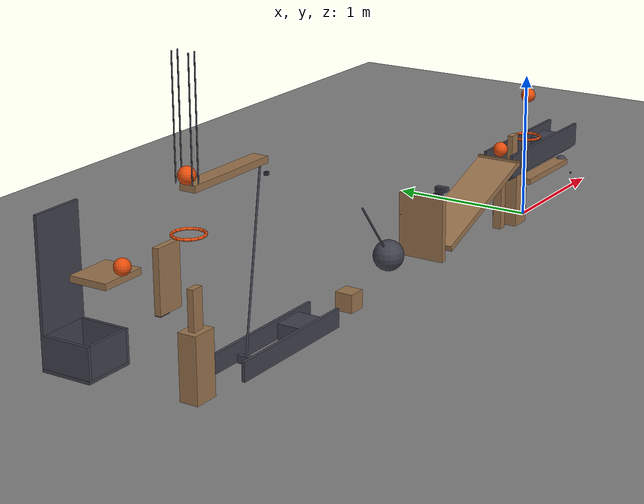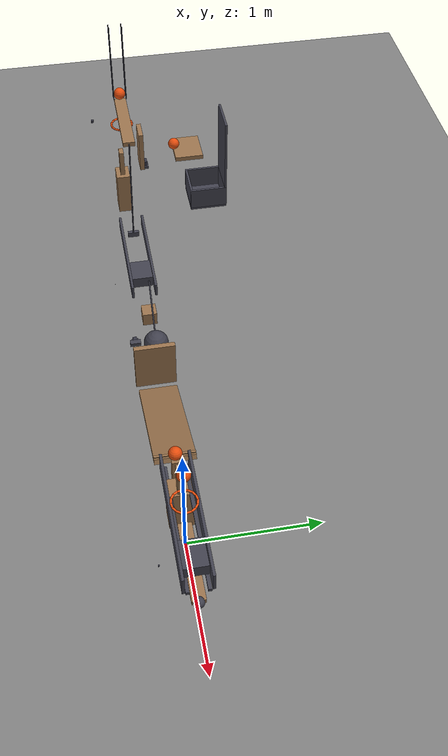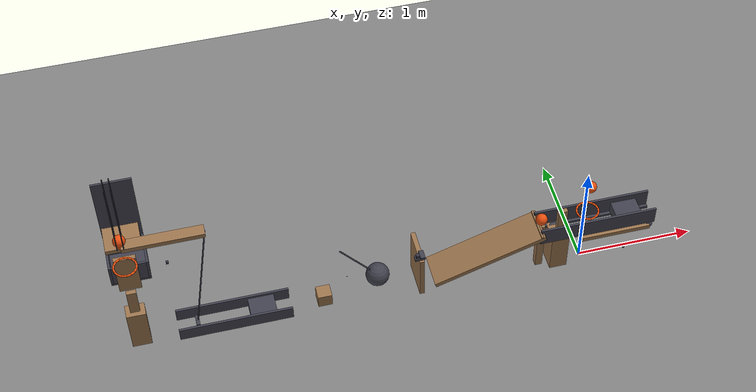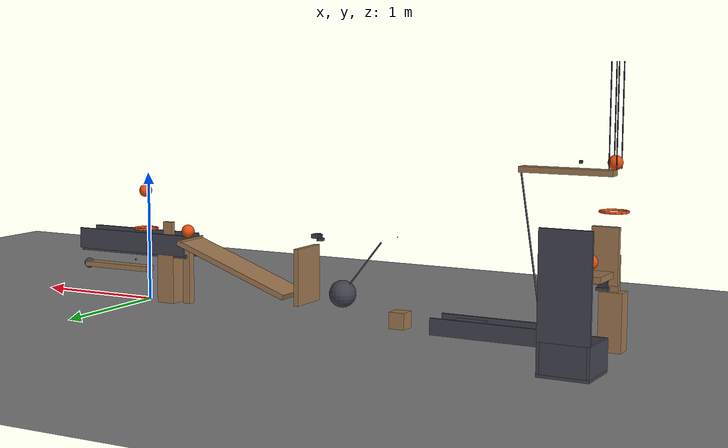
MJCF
<mujoco model="guided_gravity_and_spring_cascade">
  <compiler angle="radian"/>
  <option timestep="0.002"/>
  <worldbody>
    <geom name="floor" type="plane" size="10 10 0.1" friction="0.72 0.005 0.002"/>
    <body name="ring1">
      <geom name="ring1_00" type="capsule" size="0.008" fromto="0.122 0 0.56 0.114997 0.0352069 0.56" friction="0.72 0.005 0.0001" solref="0.01 1" rgba="0.9 0.3 0.05 1"/>
      <geom name="ring1_01" type="capsule" size="0.008" fromto="0.114997 0.0352069 0.56 0.0950538 0.0650538 0.56" friction="0.72 0.005 0.0001" solref="0.01 1" rgba="0.9 0.3 0.05 1"/>
      <geom name="ring1_02" type="capsule" size="0.008" fromto="0.0950538 0.0650538 0.56 0.0652069 0.0849969 0.56" friction="0.72 0.005 0.0001" solref="0.01 1" rgba="0.9 0.3 0.05 1"/>
      <geom name="ring1_03" type="capsule" size="0.008" fromto="0.0652069 0.0849969 0.56 0.03 0.092 0.56" friction="0.72 0.005 0.0001" solref="0.01 1" rgba="0.9 0.3 0.05 1"/>
      <geom name="ring1_04" type="capsule" size="0.008" fromto="0.03 0.092 0.56 -0.00520688 0.0849969 0.56" friction="0.72 0.005 0.0001" solref="0.01 1" rgba="0.9 0.3 0.05 1"/>
      <geom name="ring1_05" type="capsule" size="0.008" fromto="-0.00520688 0.0849969 0.56 -0.0350538 0.0650538 0.56" friction="0.72 0.005 0.0001" solref="0.01 1" rgba="0.9 0.3 0.05 1"/>
      <geom name="ring1_06" type="capsule" size="0.008" fromto="-0.0350538 0.0650538 0.56 -0.0549969 0.0352069 0.56" friction="0.72 0.005 0.0001" solref="0.01 1" rgba="0.9 0.3 0.05 1"/>
      <geom name="ring1_07" type="capsule" size="0.008" fromto="-0.0549969 0.0352069 0.56 -0.062 1.12668e-17 0.56" friction="0.72 0.005 0.0001" solref="0.01 1" rgba="0.9 0.3 0.05 1"/>
      <geom name="ring1_08" type="capsule" size="0.008" fromto="-0.062 1.12668e-17 0.56 -0.0549969 -0.0352069 0.56" friction="0.72 0.005 0.0001" solref="0.01 1" rgba="0.9 0.3 0.05 1"/>
      <geom name="ring1_09" type="capsule" size="0.008" fromto="-0.0549969 -0.0352069 0.56 -0.0350538 -0.0650538 0.56" friction="0.72 0.005 0.0001" solref="0.01 1" rgba="0.9 0.3 0.05 1"/>
      <geom name="ring1_10" type="capsule" size="0.008" fromto="-0.0350538 -0.0650538 0.56 -0.00520688 -0.0849969 0.56" friction="0.72 0.005 0.0001" solref="0.01 1" rgba="0.9 0.3 0.05 1"/>
      <geom name="ring1_11" type="capsule" size="0.008" fromto="-0.00520688 -0.0849969 0.56 0.03 -0.092 0.56" friction="0.72 0.005 0.0001" solref="0.01 1" rgba="0.9 0.3 0.05 1"/>
      <geom name="ring1_12" type="capsule" size="0.008" fromto="0.03 -0.092 0.56 0.0652069 -0.0849969 0.56" friction="0.72 0.005 0.0001" solref="0.01 1" rgba="0.9 0.3 0.05 1"/>
      <geom name="ring1_13" type="capsule" size="0.008" fromto="0.0652069 -0.0849969 0.56 0.0950538 -0.0650538 0.56" friction="0.72 0.005 0.0001" solref="0.01 1" rgba="0.9 0.3 0.05 1"/>
      <geom name="ring1_14" type="capsule" size="0.008" fromto="0.0950538 -0.0650538 0.56 0.114997 -0.0352069 0.56" friction="0.72 0.005 0.0001" solref="0.01 1" rgba="0.9 0.3 0.05 1"/>
      <geom name="ring1_15" type="capsule" size="0.008" fromto="0.114997 -0.0352069 0.56 0.122 -2.25335e-17 0.56" friction="0.72 0.005 0.0001" solref="0.01 1" rgba="0.9 0.3 0.05 1"/>
    </body>
    <body name="lever1" pos="0.3 0 0.24">
      <joint name="lever1_hinge" type="hinge" pos="0 0 0" axis="0 1 0" limited="true" range="-0.785398 0" damping="0.04"/>
      <geom name="lever1" type="box" pos="0 0 0" size="0.3 0.05 0.02" mass="0.5" friction="0.72 0.005 0.0001" solref="0.01 1" rgba="0.6 0.45 0.3 1"/>
      <geom name="lever gravity assist" type="box" pos="2e-05 -0.22 0.02" size="0.005 0.005 0.005" mass="600" friction="0.72 0.005 0.0001" solref="0.01 1" rgba="0.2 0.2 0.25 1"/>
      <geom name="lever striking head" type="sphere" pos="0.3 0 0" size="0.04" mass="0.005" friction="0.72 0.005 0.0001" solref="0.01 1" rgba="0.25 0.25 0.3 1"/>
    </body>
    <body name="ball1" pos="0.03 0 0.86">
      <freejoint/>
      <geom name="ball1" type="sphere" pos="0 0 0" size="0.05" mass="0.2" condim="6" friction="0.72 0.005 0.0001" solref="0.01 1" rgba="0.9 0.3 0.05 1"/>
    </body>
    <body name="cart1 left runner">
      <geom name="cart1 left runner" type="box" pos="0.1 0.074 0.3725" size="0.5 0.013 0.0125" friction="0.72 0.005 0.0001" solref="0.01 1" rgba="0.25 0.25 0.3 1"/>
    </body>
    <body name="cart1 right runner">
      <geom name="cart1 right runner" type="box" pos="0.1 -0.074 0.3725" size="0.5 0.013 0.0125" friction="0.72 0.005 0.0001" solref="0.01 1" rgba="0.25 0.25 0.3 1"/>
    </body>
    <body name="cart1 left guide">
      <geom name="cart1 left guide" type="box" pos="0.1 0.101 0.46" size="0.5 0.01 0.08" friction="0.72 0.005 0.0001" solref="0.01 1" rgba="0.25 0.25 0.3 1"/>
    </body>
    <body name="cart1 right guide">
      <geom name="cart1 right guide" type="box" pos="0.1 -0.101 0.46" size="0.5 0.01 0.08" friction="0.72 0.005 0.0001" solref="0.01 1" rgba="0.25 0.25 0.3 1"/>
    </body>
    <body name="domino1 pedestal">
      <geom name="domino1 pedestal" type="box" pos="-0.215 0 0.1925" size="0.075 0.09 0.1925" friction="0.72 0.005 0.0001" solref="0.01 1" rgba="0.6 0.45 0.3 1"/>
    </body>
    <body name="cart1" pos="0.38 0 0.435">
      <freejoint/>
      <geom name="cart1" type="box" pos="0 0 0" size="0.11 0.09 0.05" mass="0.5" friction="0.72 0.005 0.0001" solref="0.01 1" rgba="0.25 0.25 0.3 1"/>
    </body>
    <body name="domino1" pos="-0.19 0 0.505">
      <freejoint/>
      <geom name="domino1" type="box" pos="0 0 0" size="0.04 0.02 0.12" mass="0.25" friction="0.72 0.005 0.0001" solref="0.01 1" rgba="0.6 0.45 0.3 1"/>
    </body>
    <body name="ramp1">
      <geom name="ramp1_deck" type="box" pos="-0.839846 0 0.32101" size="0.5 0.15 0.02" euler="0 2.79253 0" friction="0.72 0.005 0.0001" solref="0.01 1" rgba="0.6 0.45 0.3 1"/>
      <geom name="ramp1_leg" type="box" pos="-0.37 0 0.24601" size="0.03 0.03 0.24601" friction="0.72 0.005 0.0001" solref="0.01 1" rgba="0.6 0.45 0.3 1"/>
    </body>
    <body name="ball2 retaining lip">
      <geom name="ball2 retaining lip" type="box" pos="-0.403 0 0.506" size="0.008 0.15 0.009" friction="0.72 0.005 0.0001" solref="0.01 1" rgba="0.6 0.45 0.3 1"/>
    </body>
    <body name="ball2" pos="-0.37 0 0.564">
      <freejoint/>
      <geom name="ball2" type="sphere" pos="0 0 0" size="0.05" mass="0.2" condim="6" friction="0.72 0.005 0.0001" solref="0.01 1" rgba="0.9 0.3 0.05 1"/>
    </body>
    <body name="door1" pos="-1.42969 0.16 0.31">
      <joint name="door1_hinge" type="hinge" pos="0 0 0" axis="0 0 1" limited="true" range="-1.22173 0" stiffness="3.4" springref="-1.22173" damping="0.04"/>
      <geom name="door1" type="box" pos="0 -0.16 0" size="0.02 0.16 0.21" mass="0.45" friction="0.72 0.005 0.0001" solref="0.01 1" rgba="0.6 0.45 0.3 1"/>
      <geom name="door latch tab" type="box" pos="0 -0.3 0.275" size="0.02 0.04 0.015" mass="0.001" friction="0.72 0.005 0.0001" solref="0.01 1" rgba="0.25 0.25 0.3 1"/>
    </body>
    <body name="door latch pedestal">
      <geom name="door latch pedestal" type="box" pos="-1.46969 -0.14 0.56" size="0.02 0.025 0.01" friction="0.72 0.005 0.0001" solref="0.01 1" rgba="0.25 0.25 0.3 1"/>
    </body>
    <body name="door latch" pos="-1.46469 -0.14 0.585">
      <freejoint/>
      <geom name="door latch" type="box" pos="0 0 0" size="0.015 0.015 0.015" mass="2" friction="0.72 0.005 0.0001" solref="0.01 1" rgba="0.2 0.2 0.25 1"/>
    </body>
    <body name="pendulum1" pos="-2.0678 0.05 0.6">
      <joint name="pendulum1_hinge" type="hinge" pos="0 0 0" axis="0 1 0" limited="true" range="0 0.663225" damping="0.04"/>
      <geom name="pendulum1" type="sphere" pos="0.307831 0 -0.394005" size="0.1" mass="0.33" friction="0.72 0.005 0.0001" solref="0.01 1" rgba="0.25 0.25 0.3 1"/>
      <geom name="pendulum rod" type="capsule" size="0.006" fromto="0 0 0 0.307831 6.93889e-18 -0.394005" mass="0.02" friction="0.72 0.005 0.0001" solref="0.01 1" rgba="0.25 0.25 0.3 1"/>
      <geom name="pendulum gravity assist" type="box" pos="-4.4e-05 -0.27 0.01" size="0.002 0.002 0.002" mass="2500" friction="0.72 0.005 0.0001" solref="0.01 1" rgba="0.2 0.2 0.25 1"/>
    </body>
    <body name="block1" pos="-2.2238 0.05 0.06">
      <freejoint/>
      <geom name="block1" type="box" pos="0 0 0" size="0.06 0.06 0.06" mass="0.35" friction="0.72 0.005 0.0001" solref="0.01 1" rgba="0.6 0.45 0.3 1"/>
    </body>
    <body name="cart2 left guide">
      <geom name="cart2 left guide" type="box" pos="-2.98 0.151 0.06" size="0.475 0.01 0.06" friction="0.72 0.005 0.0001" solref="0.01 1" rgba="0.25 0.25 0.3 1"/>
    </body>
    <body name="cart2 right guide">
      <geom name="cart2 right guide" type="box" pos="-2.98 -0.051 0.06" size="0.475 0.01 0.06" friction="0.72 0.005 0.0001" solref="0.01 1" rgba="0.25 0.25 0.3 1"/>
    </body>
    <body name="cart2" pos="-2.7438 0.05 0.05">
      <freejoint/>
      <geom name="cart2" type="box" pos="0 0 0" size="0.11 0.09 0.05" mass="0.5" friction="0.72 0.005 0.0001" solref="0.01 1" rgba="0.25 0.25 0.3 1"/>
    </body>
    <body name="seesaw1" pos="-3.4388 0.05 1.18">
      <joint name="seesaw1_hinge" type="hinge" pos="0 0 0" axis="0 1 0" limited="true" range="0 0.733038" damping="0.04"/>
      <geom name="seesaw1" type="box" pos="0 0 0" size="0.325 0.05 0.02" mass="0.55" friction="0.72 0.005 0.0001" solref="0.01 1" rgba="0.6 0.45 0.3 1"/>
      <geom name="seesaw input rod" type="capsule" size="0.006" fromto="0.325 0 0 0.15 0 -1.13" mass="0.01" friction="0.72 0.005 0.0001" solref="0.01 1" rgba="0.25 0.25 0.3 1"/>
      <geom name="seesaw input pad" type="box" pos="0.15 0 -1.13" size="0.015 0.05 0.025" mass="0.005" friction="0.72 0.005 0.0001" solref="0.01 1" rgba="0.25 0.25 0.3 1"/>
      <geom name="seesaw gravity assist" type="box" pos="0.0005 -0.27 0.04" size="0.01 0.01 0.01" mass="100" friction="0.72 0.005 0.0001" solref="0.01 1" rgba="0.2 0.2 0.25 1"/>
    </body>
    <body name="ball3" pos="-3.7638 0.05 1.25">
      <freejoint/>
      <geom name="ball3" type="sphere" pos="0 0 0" size="0.05" mass="0.2" condim="6" friction="0.72 0.005 0.0001" solref="0.01 1" rgba="0.9 0.3 0.05 1"/>
    </body>
    <body name="ball3 guide">
      <geom name="ball3 guide_near_left_rail" type="capsule" size="0.004" fromto="-3.7888 0.1035 1.21 -3.7888 0.1035 1.9" friction="0.72 0.005 0.0001" solref="0.01 1" rgba="0.25 0.25 0.3 1"/>
      <geom name="ball3 guide_near_right_rail" type="capsule" size="0.004" fromto="-3.7888 -0.0035 1.21 -3.7888 -0.0035 1.9" friction="0.72 0.005 0.0001" solref="0.01 1" rgba="0.25 0.25 0.3 1"/>
      <geom name="ball3 guide_far_left_rail" type="capsule" size="0.004" fromto="-3.7388 0.1035 1.21 -3.7388 0.1035 1.9" friction="0.72 0.005 0.0001" solref="0.01 1" rgba="0.25 0.25 0.3 1"/>
      <geom name="ball3 guide_far_right_rail" type="capsule" size="0.004" fromto="-3.7388 -0.0035 1.21 -3.7388 -0.0035 1.9" friction="0.72 0.005 0.0001" solref="0.01 1" rgba="0.25 0.25 0.3 1"/>
    </body>
    <body name="ring2">
      <geom name="ring2_00" type="capsule" size="0.008" fromto="-3.6718 0.05 0.93 -3.6788 0.0852069 0.93" friction="0.72 0.005 0.0001" solref="0.01 1" rgba="0.9 0.3 0.05 1"/>
      <geom name="ring2_01" type="capsule" size="0.008" fromto="-3.6788 0.0852069 0.93 -3.69875 0.115054 0.93" friction="0.72 0.005 0.0001" solref="0.01 1" rgba="0.9 0.3 0.05 1"/>
      <geom name="ring2_02" type="capsule" size="0.008" fromto="-3.69875 0.115054 0.93 -3.72859 0.134997 0.93" friction="0.72 0.005 0.0001" solref="0.01 1" rgba="0.9 0.3 0.05 1"/>
      <geom name="ring2_03" type="capsule" size="0.008" fromto="-3.72859 0.134997 0.93 -3.7638 0.142 0.93" friction="0.72 0.005 0.0001" solref="0.01 1" rgba="0.9 0.3 0.05 1"/>
      <geom name="ring2_04" type="capsule" size="0.008" fromto="-3.7638 0.142 0.93 -3.79901 0.134997 0.93" friction="0.72 0.005 0.0001" solref="0.01 1" rgba="0.9 0.3 0.05 1"/>
      <geom name="ring2_05" type="capsule" size="0.008" fromto="-3.79901 0.134997 0.93 -3.82885 0.115054 0.93" friction="0.72 0.005 0.0001" solref="0.01 1" rgba="0.9 0.3 0.05 1"/>
      <geom name="ring2_06" type="capsule" size="0.008" fromto="-3.82885 0.115054 0.93 -3.8488 0.0852069 0.93" friction="0.72 0.005 0.0001" solref="0.01 1" rgba="0.9 0.3 0.05 1"/>
      <geom name="ring2_07" type="capsule" size="0.008" fromto="-3.8488 0.0852069 0.93 -3.8558 0.05 0.93" friction="0.72 0.005 0.0001" solref="0.01 1" rgba="0.9 0.3 0.05 1"/>
      <geom name="ring2_08" type="capsule" size="0.008" fromto="-3.8558 0.05 0.93 -3.8488 0.0147931 0.93" friction="0.72 0.005 0.0001" solref="0.01 1" rgba="0.9 0.3 0.05 1"/>
      <geom name="ring2_09" type="capsule" size="0.008" fromto="-3.8488 0.0147931 0.93 -3.82885 -0.0150538 0.93" friction="0.72 0.005 0.0001" solref="0.01 1" rgba="0.9 0.3 0.05 1"/>
      <geom name="ring2_10" type="capsule" size="0.008" fromto="-3.82885 -0.0150538 0.93 -3.79901 -0.0349969 0.93" friction="0.72 0.005 0.0001" solref="0.01 1" rgba="0.9 0.3 0.05 1"/>
      <geom name="ring2_11" type="capsule" size="0.008" fromto="-3.79901 -0.0349969 0.93 -3.7638 -0.042 0.93" friction="0.72 0.005 0.0001" solref="0.01 1" rgba="0.9 0.3 0.05 1"/>
      <geom name="ring2_12" type="capsule" size="0.008" fromto="-3.7638 -0.042 0.93 -3.72859 -0.0349969 0.93" friction="0.72 0.005 0.0001" solref="0.01 1" rgba="0.9 0.3 0.05 1"/>
      <geom name="ring2_13" type="capsule" size="0.008" fromto="-3.72859 -0.0349969 0.93 -3.69875 -0.0150538 0.93" friction="0.72 0.005 0.0001" solref="0.01 1" rgba="0.9 0.3 0.05 1"/>
      <geom name="ring2_14" type="capsule" size="0.008" fromto="-3.69875 -0.0150538 0.93 -3.6788 0.0147931 0.93" friction="0.72 0.005 0.0001" solref="0.01 1" rgba="0.9 0.3 0.05 1"/>
      <geom name="ring2_15" type="capsule" size="0.008" fromto="-3.6788 0.0147931 0.93 -3.6718 0.05 0.93" friction="0.72 0.005 0.0001" solref="0.01 1" rgba="0.9 0.3 0.05 1"/>
    </body>
    <body name="domino2 pedestal">
      <geom name="domino2 pedestal" type="box" pos="-3.7638 0.025 0.2" size="0.08 0.06 0.2" friction="0.72 0.005 0.0001" solref="0.01 1" rgba="0.6 0.45 0.3 1"/>
    </body>
    <body name="domino2" pos="-3.7638 0.025 0.52">
      <freejoint/>
      <geom name="domino2" type="box" pos="0 0 0" size="0.04 0.02 0.12" mass="0.25" friction="0.72 0.005 0.0001" solref="0.01 1" rgba="0.6 0.45 0.3 1"/>
    </body>
    <body name="flap1" pos="-3.7638 0.205 0.85">
      <joint name="flap1_hinge" type="hinge" pos="0 0 0" axis="1 0 0" limited="true" range="0 1.0472" stiffness="0.61" springref="1.0472" damping="0.04"/>
      <geom name="flap1" type="box" pos="0 0 -0.19" size="0.09 0.02 0.19" mass="0.28" friction="0.72 0.005 0.0001" solref="0.01 1" rgba="0.6 0.45 0.3 1"/>
    </body>
    <body name="flap latch pedestal">
      <geom name="flap latch pedestal" type="box" pos="-3.7638 0.245 0.45" size="0.04 0.02 0.01" friction="0.72 0.005 0.0001" solref="0.01 1" rgba="0.25 0.25 0.3 1"/>
    </body>
    <body name="flap latch" pos="-3.7638 0.24 0.485">
      <freejoint/>
      <geom name="flap latch" type="box" pos="0 0 0" size="0.03 0.015 0.025" mass="0.25" friction="0.72 0.005 0.0001" solref="0.01 1" rgba="0.2 0.2 0.25 1"/>
    </body>
    <body name="cup1">
      <geom name="cup1_base" type="box" pos="-3.7638 0.805 0.01" size="0.17 0.17 0.01" friction="0.72 0.005 0.0001" solref="0.01 1" rgba="0.25 0.25 0.3 1"/>
      <geom name="cup1_near_wall" type="box" pos="-3.9238 0.805 0.12" size="0.01 0.17 0.1" friction="0.72 0.005 0.0001" solref="0.01 1" rgba="0.25 0.25 0.3 1"/>
      <geom name="cup1_far_wall" type="box" pos="-3.6038 0.805 0.12" size="0.01 0.17 0.1" friction="0.72 0.005 0.0001" solref="0.01 1" rgba="0.25 0.25 0.3 1"/>
      <geom name="cup1_left_wall" type="box" pos="-3.7638 0.965 0.12" size="0.15 0.01 0.1" friction="0.72 0.005 0.0001" solref="0.01 1" rgba="0.25 0.25 0.3 1"/>
      <geom name="cup1_right_wall" type="box" pos="-3.7638 0.645 0.12" size="0.15 0.01 0.1" friction="0.72 0.005 0.0001" solref="0.01 1" rgba="0.25 0.25 0.3 1"/>
    </body>
    <body name="shelf1">
      <geom name="shelf1" type="box" pos="-3.7638 0.63 0.59" size="0.15 0.125 0.02" friction="0.72 0.005 0.0001" solref="0.01 1" rgba="0.6 0.45 0.3 1"/>
    </body>
    <body name="ball4" pos="-3.7638 0.51 0.66">
      <freejoint/>
      <geom name="ball4" type="sphere" pos="0 0 0" size="0.05" mass="0.2" condim="6" friction="0.72 0.005 0.0001" solref="0.01 1" rgba="0.9 0.3 0.05 1"/>
    </body>
    <body name="cup catch screen">
      <geom name="cup catch screen" type="box" pos="-3.7638 0.965 0.57" size="0.17 0.01 0.35" friction="0.72 0.005 0.0001" solref="0.01 1" rgba="0.25 0.25 0.3 1"/>
    </body>
  </worldbody>
  <keyframe>
    <key name="start" qpos="0 0.03 0 0.86 1 0 0 0 0.38 0 0.435 1 0 0 0 -0.19 0 0.505 1 0 0 0 -0.37 0 0.564 1 0 0 0 0 -1.46469 -0.14 0.585 1 0 0 0 0 -2.2238 0.05 0.06 1 0 0 0 -2.7438 0.05 0.05 1 0 0 0 0 -3.7638 0.05 1.25 1 0 0 0 -3.7638 0.025 0.52 1 0 0 0 0 -3.7638 0.24 0.485 1 0 0 0 -3.7638 0.51 0.66 1 0 0 0" qvel="0 0 0 0 0 0 0 0 0 0 0 0 0 0 0 0 0 0 0 0 0 0 0 0 0 0 0 0 0 0 0 0 0 0 0 0 0 0 0 0 0 0 0 0 0 0 0 0 0 0 0 0 0 0 0 0 0 0 0 0 0 0 0 0 0 0 0 0 0 0 0"/>
  </keyframe>
</mujoco>
